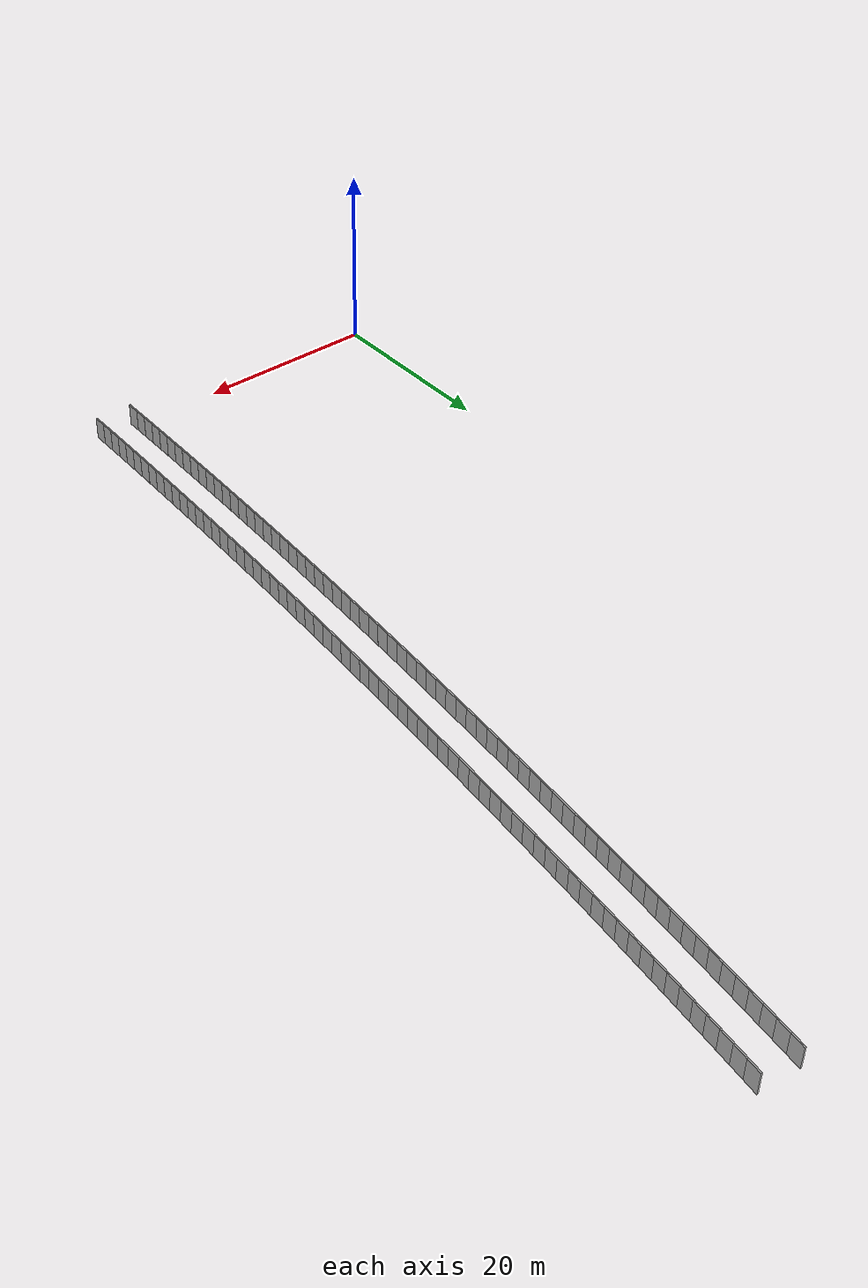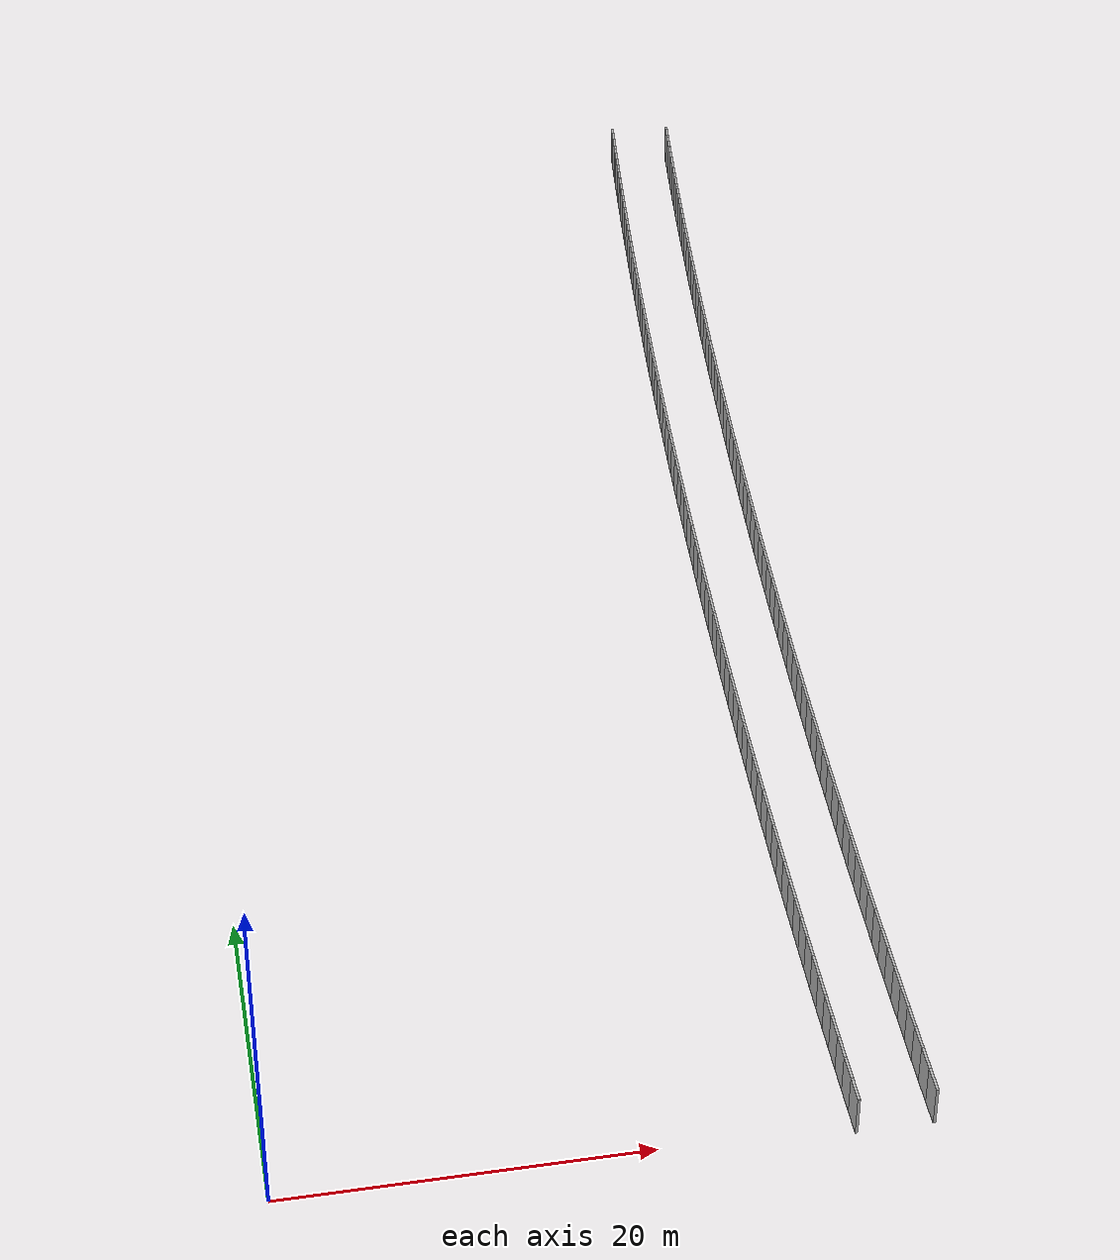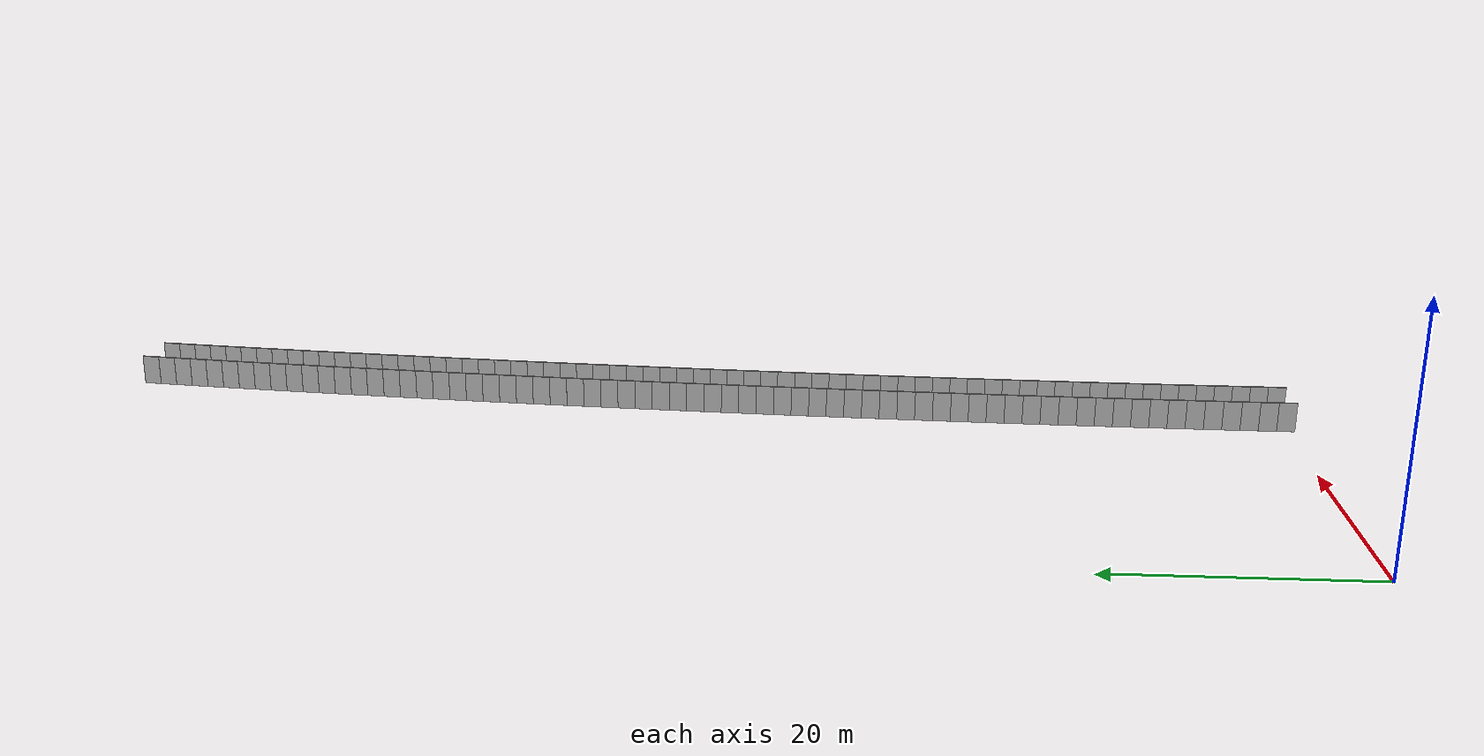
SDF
<sdf version="1.6">
 <model name="sps_0113">
  <static>1</static>
  <allow_auto_disable>0</allow_auto_disable>
  <link name="Wall5177">
   <collision name="collision"><geometry><box><size>1.49644 0.15 2.5</size></box></geometry></collision>
   <visual name="visual">
    <geometry><box><size>1.49644 0.15 2.5</size></box></geometry>
    <transparency>0.0</transparency>
   </visual>
   <pose>40.3633 98.5988 1.25 0 0 -1.68316</pose>
  </link>
  <link name="Wall5178">
   <collision name="collision"><geometry><box><size>1.4966 0.15 2.5</size></box></geometry></collision>
   <visual name="visual">
    <geometry><box><size>1.4966 0.15 2.5</size></box></geometry>
    <transparency>0.0</transparency>
   </visual>
   <pose>40.1967 97.1116 1.25 0 0 -1.68154</pose>
  </link>
  <link name="Wall5179">
   <collision name="collision"><geometry><box><size>1.49672 0.15 2.5</size></box></geometry></collision>
   <visual name="visual">
    <geometry><box><size>1.49672 0.15 2.5</size></box></geometry>
    <transparency>0.0</transparency>
   </visual>
   <pose>40.0324 95.624 1.25 0 0 -1.68006</pose>
  </link>
  <link name="Wall5180">
   <collision name="collision"><geometry><box><size>1.49643 0.15 2.5</size></box></geometry></collision>
   <visual name="visual">
    <geometry><box><size>1.49643 0.15 2.5</size></box></geometry>
    <transparency>0.0</transparency>
   </visual>
   <pose>39.8705 94.1362 1.25 0 0 -1.67831</pose>
  </link>
  <link name="Wall5181">
   <collision name="collision"><geometry><box><size>1.49636 0.15 2.5</size></box></geometry></collision>
   <visual name="visual">
    <geometry><box><size>1.49636 0.15 2.5</size></box></geometry>
    <transparency>0.0</transparency>
   </visual>
   <pose>39.7111 92.6483 1.25 0 0 -1.67672</pose>
  </link>
  <link name="Wall5182">
   <collision name="collision"><geometry><box><size>1.49656 0.15 2.5</size></box></geometry></collision>
   <visual name="visual">
    <geometry><box><size>1.49656 0.15 2.5</size></box></geometry>
    <transparency>0.0</transparency>
   </visual>
   <pose>39.554 91.1601 1.25 0 0 -1.67523</pose>
  </link>
  <link name="Wall5183">
   <collision name="collision"><geometry><box><size>1.49647 0.15 2.5</size></box></geometry></collision>
   <visual name="visual">
    <geometry><box><size>1.49647 0.15 2.5</size></box></geometry>
    <transparency>0.0</transparency>
   </visual>
   <pose>39.3993 89.6716 1.25 0 0 -1.67347</pose>
  </link>
  <link name="Wall5184">
   <collision name="collision"><geometry><box><size>1.49651 0.15 2.5</size></box></geometry></collision>
   <visual name="visual">
    <geometry><box><size>1.49651 0.15 2.5</size></box></geometry>
    <transparency>0.0</transparency>
   </visual>
   <pose>39.2469 88.1829 1.25 0 0 -1.67216</pose>
  </link>
  <link name="Wall5185">
   <collision name="collision"><geometry><box><size>1.49661 0.15 2.5</size></box></geometry></collision>
   <visual name="visual">
    <geometry><box><size>1.49661 0.15 2.5</size></box></geometry>
    <transparency>0.0</transparency>
   </visual>
   <pose>39.0969 86.6939 1.25 0 0 -1.67035</pose>
  </link>
  <link name="Wall5186">
   <collision name="collision"><geometry><box><size>1.4964 0.15 2.5</size></box></geometry></collision>
   <visual name="visual">
    <geometry><box><size>1.4964 0.15 2.5</size></box></geometry>
    <transparency>0.0</transparency>
   </visual>
   <pose>38.9492 85.2047 1.25 0 0 -1.66893</pose>
  </link>
  <link name="Wall5187">
   <collision name="collision"><geometry><box><size>1.49657 0.15 2.5</size></box></geometry></collision>
   <visual name="visual">
    <geometry><box><size>1.49657 0.15 2.5</size></box></geometry>
    <transparency>0.0</transparency>
   </visual>
   <pose>38.8039 83.7153 1.25 0 0 -1.66719</pose>
  </link>
  <link name="Wall5188">
   <collision name="collision"><geometry><box><size>1.49656 0.15 2.5</size></box></geometry></collision>
   <visual name="visual">
    <geometry><box><size>1.49656 0.15 2.5</size></box></geometry>
    <transparency>0.0</transparency>
   </visual>
   <pose>38.6608 82.2256 1.25 0 0 -1.6658</pose>
  </link>
  <link name="Wall5189">
   <collision name="collision"><geometry><box><size>1.4965 0.15 2.5</size></box></geometry></collision>
   <visual name="visual">
    <geometry><box><size>1.4965 0.15 2.5</size></box></geometry>
    <transparency>0.0</transparency>
   </visual>
   <pose>38.5202 80.7357 1.25 0 0 -1.66409</pose>
  </link>
  <link name="Wall5190">
   <collision name="collision"><geometry><box><size>1.49648 0.15 2.5</size></box></geometry></collision>
   <visual name="visual">
    <geometry><box><size>1.49648 0.15 2.5</size></box></geometry>
    <transparency>0.0</transparency>
   </visual>
   <pose>38.3819 79.2456 1.25 0 0 -1.66261</pose>
  </link>
  <link name="Wall5191">
   <collision name="collision"><geometry><box><size>1.4965 0.15 2.5</size></box></geometry></collision>
   <visual name="visual">
    <geometry><box><size>1.4965 0.15 2.5</size></box></geometry>
    <transparency>0.0</transparency>
   </visual>
   <pose>38.2458 77.7553 1.25 0 0 -1.66101</pose>
  </link>
  <link name="Wall5192">
   <collision name="collision"><geometry><box><size>1.49663 0.15 2.5</size></box></geometry></collision>
   <visual name="visual">
    <geometry><box><size>1.49663 0.15 2.5</size></box></geometry>
    <transparency>0.0</transparency>
   </visual>
   <pose>38.1123 76.2647 1.25 0 0 -1.65924</pose>
  </link>
  <link name="Wall5193">
   <collision name="collision"><geometry><box><size>1.49644 0.15 2.5</size></box></geometry></collision>
   <visual name="visual">
    <geometry><box><size>1.49644 0.15 2.5</size></box></geometry>
    <transparency>0.0</transparency>
   </visual>
   <pose>37.9813 74.7739 1.25 0 0 -1.65774</pose>
  </link>
  <link name="Wall5194">
   <collision name="collision"><geometry><box><size>1.4965 0.15 2.5</size></box></geometry></collision>
   <visual name="visual">
    <geometry><box><size>1.4965 0.15 2.5</size></box></geometry>
    <transparency>0.0</transparency>
   </visual>
   <pose>37.8524 73.283 1.25 0 0 -1.65631</pose>
  </link>
  <link name="Wall5195">
   <collision name="collision"><geometry><box><size>1.49664 0.15 2.5</size></box></geometry></collision>
   <visual name="visual">
    <geometry><box><size>1.49664 0.15 2.5</size></box></geometry>
    <transparency>0.0</transparency>
   </visual>
   <pose>37.7259 71.7918 1.25 0 0 -1.65458</pose>
  </link>
  <link name="Wall5196">
   <collision name="collision"><geometry><box><size>1.49644 0.15 2.5</size></box></geometry></collision>
   <visual name="visual">
    <geometry><box><size>1.49644 0.15 2.5</size></box></geometry>
    <transparency>0.0</transparency>
   </visual>
   <pose>37.6018 70.3004 1.25 0 0 -1.65295</pose>
  </link>
  <link name="Wall5197">
   <collision name="collision"><geometry><box><size>1.49667 0.15 2.5</size></box></geometry></collision>
   <visual name="visual">
    <geometry><box><size>1.49667 0.15 2.5</size></box></geometry>
    <transparency>0.0</transparency>
   </visual>
   <pose>37.4802 68.8088 1.25 0 0 -1.6513</pose>
  </link>
  <link name="Wall5198">
   <collision name="collision"><geometry><box><size>1.49644 0.15 2.5</size></box></geometry></collision>
   <visual name="visual">
    <geometry><box><size>1.49644 0.15 2.5</size></box></geometry>
    <transparency>0.0</transparency>
   </visual>
   <pose>37.361 67.317 1.25 0 0 -1.64988</pose>
  </link>
  <link name="Wall5199">
   <collision name="collision"><geometry><box><size>1.4965 0.15 2.5</size></box></geometry></collision>
   <visual name="visual">
    <geometry><box><size>1.4965 0.15 2.5</size></box></geometry>
    <transparency>0.0</transparency>
   </visual>
   <pose>37.2439 65.8251 1.25 0 0 -1.64837</pose>
  </link>
  <link name="Wall5200">
   <collision name="collision"><geometry><box><size>1.49655 0.15 2.5</size></box></geometry></collision>
   <visual name="visual">
    <geometry><box><size>1.49655 0.15 2.5</size></box></geometry>
    <transparency>0.0</transparency>
   </visual>
   <pose>37.1292 64.333 1.25 0 0 -1.64665</pose>
  </link>
  <link name="Wall5201">
   <collision name="collision"><geometry><box><size>1.49651 0.15 2.5</size></box></geometry></collision>
   <visual name="visual">
    <geometry><box><size>1.49651 0.15 2.5</size></box></geometry>
    <transparency>0.0</transparency>
   </visual>
   <pose>37.0169 62.8407 1.25 0 0 -1.64518</pose>
  </link>
  <link name="Wall5202">
   <collision name="collision"><geometry><box><size>1.49656 0.15 2.5</size></box></geometry></collision>
   <visual name="visual">
    <geometry><box><size>1.49656 0.15 2.5</size></box></geometry>
    <transparency>0.0</transparency>
   </visual>
   <pose>36.907 61.3482 1.25 0 0 -1.64341</pose>
  </link>
  <link name="Wall5203">
   <collision name="collision"><geometry><box><size>1.49641 0.15 2.5</size></box></geometry></collision>
   <visual name="visual">
    <geometry><box><size>1.49641 0.15 2.5</size></box></geometry>
    <transparency>0.0</transparency>
   </visual>
   <pose>36.7995 59.8556 1.25 0 0 -1.64199</pose>
  </link>
  <link name="Wall5204">
   <collision name="collision"><geometry><box><size>1.4966 0.15 2.5</size></box></geometry></collision>
   <visual name="visual">
    <geometry><box><size>1.4966 0.15 2.5</size></box></geometry>
    <transparency>0.0</transparency>
   </visual>
   <pose>36.6942 58.3628 1.25 0 0 -1.64035</pose>
  </link>
  <link name="Wall5205">
   <collision name="collision"><geometry><box><size>1.49643 0.15 2.5</size></box></geometry></collision>
   <visual name="visual">
    <geometry><box><size>1.49643 0.15 2.5</size></box></geometry>
    <transparency>0.0</transparency>
   </visual>
   <pose>36.5915 56.8698 1.25 0 0 -1.63872</pose>
  </link>
  <link name="Wall5206">
   <collision name="collision"><geometry><box><size>1.49652 0.15 2.5</size></box></geometry></collision>
   <visual name="visual">
    <geometry><box><size>1.49652 0.15 2.5</size></box></geometry>
    <transparency>0.0</transparency>
   </visual>
   <pose>36.4911 55.3767 1.25 0 0 -1.63716</pose>
  </link>
  <link name="Wall5207">
   <collision name="collision"><geometry><box><size>1.49655 0.15 2.5</size></box></geometry></collision>
   <visual name="visual">
    <geometry><box><size>1.49655 0.15 2.5</size></box></geometry>
    <transparency>0.0</transparency>
   </visual>
   <pose>36.3929 53.8834 1.25 0 0 -1.63565</pose>
  </link>
  <link name="Wall5208">
   <collision name="collision"><geometry><box><size>1.49658 0.15 2.5</size></box></geometry></collision>
   <visual name="visual">
    <geometry><box><size>1.49658 0.15 2.5</size></box></geometry>
    <transparency>0.0</transparency>
   </visual>
   <pose>36.2971 52.3899 1.25 0 0 -1.63405</pose>
  </link>
  <link name="Wall5209">
   <collision name="collision"><geometry><box><size>1.49642 0.15 2.5</size></box></geometry></collision>
   <visual name="visual">
    <geometry><box><size>1.49642 0.15 2.5</size></box></geometry>
    <transparency>0.0</transparency>
   </visual>
   <pose>36.2038 50.8963 1.25 0 0 -1.6323</pose>
  </link>
  <link name="Wall5210">
   <collision name="collision"><geometry><box><size>1.49648 0.15 2.5</size></box></geometry></collision>
   <visual name="visual">
    <geometry><box><size>1.49648 0.15 2.5</size></box></geometry>
    <transparency>0.0</transparency>
   </visual>
   <pose>36.1128 49.4026 1.25 0 0 -1.63099</pose>
  </link>
  <link name="Wall5211">
   <collision name="collision"><geometry><box><size>1.49657 0.15 2.5</size></box></geometry></collision>
   <visual name="visual">
    <geometry><box><size>1.49657 0.15 2.5</size></box></geometry>
    <transparency>0.0</transparency>
   </visual>
   <pose>36.0241 47.9087 1.25 0 0 -1.62923</pose>
  </link>
  <link name="Wall5212">
   <collision name="collision"><geometry><box><size>1.49643 0.15 2.5</size></box></geometry></collision>
   <visual name="visual">
    <geometry><box><size>1.49643 0.15 2.5</size></box></geometry>
    <transparency>0.0</transparency>
   </visual>
   <pose>35.9379 46.4147 1.25 0 0 -1.6276</pose>
  </link>
  <link name="Wall5213">
   <collision name="collision"><geometry><box><size>1.4965 0.15 2.5</size></box></geometry></collision>
   <visual name="visual">
    <geometry><box><size>1.4965 0.15 2.5</size></box></geometry>
    <transparency>0.0</transparency>
   </visual>
   <pose>35.8541 44.9206 1.25 0 0 -1.62617</pose>
  </link>
  <link name="Wall5214">
   <collision name="collision"><geometry><box><size>1.49672 0.15 2.5</size></box></geometry></collision>
   <visual name="visual">
    <geometry><box><size>1.49672 0.15 2.5</size></box></geometry>
    <transparency>0.0</transparency>
   </visual>
   <pose>35.7725 43.4262 1.25 0 0 -1.62441</pose>
  </link>
  <link name="Wall5215">
   <collision name="collision"><geometry><box><size>1.49648 0.15 2.5</size></box></geometry></collision>
   <visual name="visual">
    <geometry><box><size>1.49648 0.15 2.5</size></box></geometry>
    <transparency>0.0</transparency>
   </visual>
   <pose>35.6934 41.9317 1.25 0 0 -1.62294</pose>
  </link>
  <link name="Wall5216">
   <collision name="collision"><geometry><box><size>1.49648 0.15 2.5</size></box></geometry></collision>
   <visual name="visual">
    <geometry><box><size>1.49648 0.15 2.5</size></box></geometry>
    <transparency>0.0</transparency>
   </visual>
   <pose>35.6167 40.4372 1.25 0 0 -1.62131</pose>
  </link>
  <link name="Wall5217">
   <collision name="collision"><geometry><box><size>1.49642 0.15 2.5</size></box></geometry></collision>
   <visual name="visual">
    <geometry><box><size>1.49642 0.15 2.5</size></box></geometry>
    <transparency>0.0</transparency>
   </visual>
   <pose>35.5423 38.9426 1.25 0 0 -1.61976</pose>
  </link>
  <link name="Wall5218">
   <collision name="collision"><geometry><box><size>1.49644 0.15 2.5</size></box></geometry></collision>
   <visual name="visual">
    <geometry><box><size>1.49644 0.15 2.5</size></box></geometry>
    <transparency>0.0</transparency>
   </visual>
   <pose>35.4701 37.4479 1.25 0 0 -1.61825</pose>
  </link>
  <link name="Wall5219">
   <collision name="collision"><geometry><box><size>1.49656 0.15 2.5</size></box></geometry></collision>
   <visual name="visual">
    <geometry><box><size>1.49656 0.15 2.5</size></box></geometry>
    <transparency>0.0</transparency>
   </visual>
   <pose>35.4004 35.953 1.25 0 0 -1.61653</pose>
  </link>
  <link name="Wall5220">
   <collision name="collision"><geometry><box><size>1.4967 0.15 2.5</size></box></geometry></collision>
   <visual name="visual">
    <geometry><box><size>1.4967 0.15 2.5</size></box></geometry>
    <transparency>0.0</transparency>
   </visual>
   <pose>35.3332 34.4579 1.25 0 0 -1.61502</pose>
  </link>
  <link name="Wall5221">
   <collision name="collision"><geometry><box><size>1.49636 0.15 2.5</size></box></geometry></collision>
   <visual name="visual">
    <geometry><box><size>1.49636 0.15 2.5</size></box></geometry>
    <transparency>0.0</transparency>
   </visual>
   <pose>35.2681 32.9628 1.25 0 0 -1.61347</pose>
  </link>
  <link name="Wall5222">
   <collision name="collision"><geometry><box><size>1.49668 0.15 2.5</size></box></geometry></collision>
   <visual name="visual">
    <geometry><box><size>1.49668 0.15 2.5</size></box></geometry>
    <transparency>0.0</transparency>
   </visual>
   <pose>35.2055 31.4676 1.25 0 0 -1.61183</pose>
  </link>
  <link name="Wall5223">
   <collision name="collision"><geometry><box><size>1.49633 0.15 2.5</size></box></geometry></collision>
   <visual name="visual">
    <geometry><box><size>1.49633 0.15 2.5</size></box></geometry>
    <transparency>0.0</transparency>
   </visual>
   <pose>35.1454 29.9723 1.25 0 0 -1.61009</pose>
  </link>
  <link name="Wall5224">
   <collision name="collision"><geometry><box><size>1.49668 0.15 2.5</size></box></geometry></collision>
   <visual name="visual">
    <geometry><box><size>1.49668 0.15 2.5</size></box></geometry>
    <transparency>0.0</transparency>
   </visual>
   <pose>35.0876 28.4769 1.25 0 0 -1.60877</pose>
  </link>
  <link name="Wall5225">
   <collision name="collision"><geometry><box><size>1.49659 0.15 2.5</size></box></geometry></collision>
   <visual name="visual">
    <geometry><box><size>1.49659 0.15 2.5</size></box></geometry>
    <transparency>0.0</transparency>
   </visual>
   <pose>35.0321 26.9813 1.25 0 0 -1.60702</pose>
  </link>
  <link name="Wall5226">
   <collision name="collision"><geometry><box><size>1.4965 0.15 2.5</size></box></geometry></collision>
   <visual name="visual">
    <geometry><box><size>1.4965 0.15 2.5</size></box></geometry>
    <transparency>0.0</transparency>
   </visual>
   <pose>34.9791 25.4857 1.25 0 0 -1.60539</pose>
  </link>
  <link name="Wall5227">
   <collision name="collision"><geometry><box><size>1.49661 0.15 2.5</size></box></geometry></collision>
   <visual name="visual">
    <geometry><box><size>1.49661 0.15 2.5</size></box></geometry>
    <transparency>0.0</transparency>
   </visual>
   <pose>34.9285 23.99 1.25 0 0 -1.60396</pose>
  </link>
  <link name="Wall5228">
   <collision name="collision"><geometry><box><size>1.49635 0.15 2.5</size></box></geometry></collision>
   <visual name="visual">
    <geometry><box><size>1.49635 0.15 2.5</size></box></geometry>
    <transparency>0.0</transparency>
   </visual>
   <pose>34.8801 22.4943 1.25 0 0 -1.60233</pose>
  </link>
  <link name="Wall5229">
   <collision name="collision"><geometry><box><size>1.49646 0.15 2.5</size></box></geometry></collision>
   <visual name="visual">
    <geometry><box><size>1.49646 0.15 2.5</size></box></geometry>
    <transparency>0.0</transparency>
   </visual>
   <pose>34.8341 20.9986 1.25 0 0 -1.60074</pose>
  </link>
  <link name="Wall5230">
   <collision name="collision"><geometry><box><size>1.49639 0.15 2.5</size></box></geometry></collision>
   <visual name="visual">
    <geometry><box><size>1.49639 0.15 2.5</size></box></geometry>
    <transparency>0.0</transparency>
   </visual>
   <pose>34.7905 19.5028 1.25 0 0 -1.59915</pose>
  </link>
  <link name="Wall5231">
   <collision name="collision"><geometry><box><size>1.49657 0.15 2.5</size></box></geometry></collision>
   <visual name="visual">
    <geometry><box><size>1.49657 0.15 2.5</size></box></geometry>
    <transparency>0.0</transparency>
   </visual>
   <pose>34.7493 18.0069 1.25 0 0 -1.59751</pose>
  </link>
  <link name="Wall5232">
   <collision name="collision"><geometry><box><size>1.49663 0.15 2.5</size></box></geometry></collision>
   <visual name="visual">
    <geometry><box><size>1.49663 0.15 2.5</size></box></geometry>
    <transparency>0.0</transparency>
   </visual>
   <pose>34.7105 16.5108 1.25 0 0 -1.59592</pose>
  </link>
  <link name="Wall5233">
   <collision name="collision"><geometry><box><size>1.49645 0.15 2.5</size></box></geometry></collision>
   <visual name="visual">
    <geometry><box><size>1.49645 0.15 2.5</size></box></geometry>
    <transparency>0.0</transparency>
   </visual>
   <pose>34.674 15.0147 1.25 0 0 -1.59445</pose>
  </link>
  <link name="Wall5234">
   <collision name="collision"><geometry><box><size>1.49652 0.15 2.5</size></box></geometry></collision>
   <visual name="visual">
    <geometry><box><size>1.49652 0.15 2.5</size></box></geometry>
    <transparency>0.0</transparency>
   </visual>
   <pose>34.6399 13.5186 1.25 0 0 -1.59274</pose>
  </link>
  <link name="Wall5235">
   <collision name="collision"><geometry><box><size>1.49671 0.15 2.5</size></box></geometry></collision>
   <visual name="visual">
    <geometry><box><size>1.49671 0.15 2.5</size></box></geometry>
    <transparency>0.0</transparency>
   </visual>
   <pose>34.6081 12.0223 1.25 0 0 -1.59123</pose>
  </link>
  <link name="Wall5236">
   <collision name="collision"><geometry><box><size>1.49648 0.15 2.5</size></box></geometry></collision>
   <visual name="visual">
    <geometry><box><size>1.49648 0.15 2.5</size></box></geometry>
    <transparency>0.0</transparency>
   </visual>
   <pose>34.5788 10.526 1.25 0 0 -1.58964</pose>
  </link>
  <link name="Wall5237">
   <collision name="collision"><geometry><box><size>1.49644 0.15 2.5</size></box></geometry></collision>
   <visual name="visual">
    <geometry><box><size>1.49644 0.15 2.5</size></box></geometry>
    <transparency>0.0</transparency>
   </visual>
   <pose>34.5517 9.0298 1.25 0 0 -1.58805</pose>
  </link>
  <link name="Wall5238">
   <collision name="collision"><geometry><box><size>1.49658 0.15 2.5</size></box></geometry></collision>
   <visual name="visual">
    <geometry><box><size>1.49658 0.15 2.5</size></box></geometry>
    <transparency>0.0</transparency>
   </visual>
   <pose>34.5271 7.53349 1.25 0 0 -1.58654</pose>
  </link>
  <link name="Wall5239">
   <collision name="collision"><geometry><box><size>1.49655 0.15 2.5</size></box></geometry></collision>
   <visual name="visual">
    <geometry><box><size>1.49655 0.15 2.5</size></box></geometry>
    <transparency>0.0</transparency>
   </visual>
   <pose>34.5048 6.03709 1.25 0 0 -1.58483</pose>
  </link>
  <link name="Wall5240">
   <collision name="collision"><geometry><box><size>1.49652 0.15 2.5</size></box></geometry></collision>
   <visual name="visual">
    <geometry><box><size>1.49652 0.15 2.5</size></box></geometry>
    <transparency>0.0</transparency>
   </visual>
   <pose>34.4849 4.54069 1.25 0 0 -1.58336</pose>
  </link>
  <link name="Wall5241">
   <collision name="collision"><geometry><box><size>1.49649 0.15 2.5</size></box></geometry></collision>
   <visual name="visual">
    <geometry><box><size>1.49649 0.15 2.5</size></box></geometry>
    <transparency>0.0</transparency>
   </visual>
   <pose>34.4673 3.0443 1.25 0 0 -1.58177</pose>
  </link>
  <link name="Wall5242">
   <collision name="collision"><geometry><box><size>1.49646 0.15 2.5</size></box></geometry></collision>
   <visual name="visual">
    <geometry><box><size>1.49646 0.15 2.5</size></box></geometry>
    <transparency>0.0</transparency>
   </visual>
   <pose>34.452 1.5479 1.25 0 0 -1.58018</pose>
  </link>
  <link name="Wall5243">
   <collision name="collision"><geometry><box><size>1.49663 0.15 2.5</size></box></geometry></collision>
   <visual name="visual">
    <geometry><box><size>1.49663 0.15 2.5</size></box></geometry>
    <transparency>0.0</transparency>
   </visual>
   <pose>34.4392 0.0514058 1.25 0 0 -1.57854</pose>
  </link>
  <link name="Wall6973">
   <collision name="collision"><geometry><box><size>1.50307 0.15 2.5</size></box></geometry></collision>
   <visual name="visual">
    <geometry><box><size>1.50307 0.15 2.5</size></box></geometry>
    <transparency>0.0</transparency>
   </visual>
   <pose>36.2501 99.0627 1.25 0 0 -1.68319</pose>
  </link>
  <link name="Wall6974">
   <collision name="collision"><geometry><box><size>1.50315 0.15 2.5</size></box></geometry></collision>
   <visual name="visual">
    <geometry><box><size>1.50315 0.15 2.5</size></box></geometry>
    <transparency>0.0</transparency>
   </visual>
   <pose>36.0828 97.5689 1.25 0 0 -1.68147</pose>
  </link>
  <link name="Wall6975">
   <collision name="collision"><geometry><box><size>1.50299 0.15 2.5</size></box></geometry></collision>
   <visual name="visual">
    <geometry><box><size>1.50299 0.15 2.5</size></box></geometry>
    <transparency>0.0</transparency>
   </visual>
   <pose>35.9178 96.0749 1.25 0 0 -1.68013</pose>
  </link>
  <link name="Wall6976">
   <collision name="collision"><geometry><box><size>1.50305 0.15 2.5</size></box></geometry></collision>
   <visual name="visual">
    <geometry><box><size>1.50305 0.15 2.5</size></box></geometry>
    <transparency>0.0</transparency>
   </visual>
   <pose>35.7552 94.5807 1.25 0 0 -1.67825</pose>
  </link>
  <link name="Wall6977">
   <collision name="collision"><geometry><box><size>1.50324 0.15 2.5</size></box></geometry></collision>
   <visual name="visual">
    <geometry><box><size>1.50324 0.15 2.5</size></box></geometry>
    <transparency>0.0</transparency>
   </visual>
   <pose>35.5951 93.0861 1.25 0 0 -1.67676</pose>
  </link>
  <link name="Wall6978">
   <collision name="collision"><geometry><box><size>1.50299 0.15 2.5</size></box></geometry></collision>
   <visual name="visual">
    <geometry><box><size>1.50299 0.15 2.5</size></box></geometry>
    <transparency>0.0</transparency>
   </visual>
   <pose>35.4373 91.5913 1.25 0 0 -1.67519</pose>
  </link>
  <link name="Wall6979">
   <collision name="collision"><geometry><box><size>1.50312 0.15 2.5</size></box></geometry></collision>
   <visual name="visual">
    <geometry><box><size>1.50312 0.15 2.5</size></box></geometry>
    <transparency>0.0</transparency>
   </visual>
   <pose>35.2819 90.0963 1.25 0 0 -1.67367</pose>
  </link>
  <link name="Wall6980">
   <collision name="collision"><geometry><box><size>1.50295 0.15 2.5</size></box></geometry></collision>
   <visual name="visual">
    <geometry><box><size>1.50295 0.15 2.5</size></box></geometry>
    <transparency>0.0</transparency>
   </visual>
   <pose>35.1287 88.6011 1.25 0 0 -1.67213</pose>
  </link>
  <link name="Wall6981">
   <collision name="collision"><geometry><box><size>1.50307 0.15 2.5</size></box></geometry></collision>
   <visual name="visual">
    <geometry><box><size>1.50307 0.15 2.5</size></box></geometry>
    <transparency>0.0</transparency>
   </visual>
   <pose>34.9778 87.1057 1.25 0 0 -1.67049</pose>
  </link>
  <link name="Wall6982">
   <collision name="collision"><geometry><box><size>1.50317 0.15 2.5</size></box></geometry></collision>
   <visual name="visual">
    <geometry><box><size>1.50317 0.15 2.5</size></box></geometry>
    <transparency>0.0</transparency>
   </visual>
   <pose>34.8296 85.6099 1.25 0 0 -1.66873</pose>
  </link>
  <link name="Wall6983">
   <collision name="collision"><geometry><box><size>1.50297 0.15 2.5</size></box></geometry></collision>
   <visual name="visual">
    <geometry><box><size>1.50297 0.15 2.5</size></box></geometry>
    <transparency>0.0</transparency>
   </visual>
   <pose>34.6836 84.1139 1.25 0 0 -1.66731</pose>
  </link>
  <link name="Wall6984">
   <collision name="collision"><geometry><box><size>1.50316 0.15 2.5</size></box></geometry></collision>
   <visual name="visual">
    <geometry><box><size>1.50316 0.15 2.5</size></box></geometry>
    <transparency>0.0</transparency>
   </visual>
   <pose>34.54 82.6177 1.25 0 0 -1.66567</pose>
  </link>
  <link name="Wall6985">
   <collision name="collision"><geometry><box><size>1.50317 0.15 2.5</size></box></geometry></collision>
   <visual name="visual">
    <geometry><box><size>1.50317 0.15 2.5</size></box></geometry>
    <transparency>0.0</transparency>
   </visual>
   <pose>34.3989 81.1212 1.25 0 0 -1.66404</pose>
  </link>
  <link name="Wall6986">
   <collision name="collision"><geometry><box><size>1.5029 0.15 2.5</size></box></geometry></collision>
   <visual name="visual">
    <geometry><box><size>1.5029 0.15 2.5</size></box></geometry>
    <transparency>0.0</transparency>
   </visual>
   <pose>34.2601 79.6246 1.25 0 0 -1.6625</pose>
  </link>
  <link name="Wall6987">
   <collision name="collision"><geometry><box><size>1.50312 0.15 2.5</size></box></geometry></collision>
   <visual name="visual">
    <geometry><box><size>1.50312 0.15 2.5</size></box></geometry>
    <transparency>0.0</transparency>
   </visual>
   <pose>34.1236 78.1278 1.25 0 0 -1.66098</pose>
  </link>
  <link name="Wall6988">
   <collision name="collision"><geometry><box><size>1.50309 0.15 2.5</size></box></geometry></collision>
   <visual name="visual">
    <geometry><box><size>1.50309 0.15 2.5</size></box></geometry>
    <transparency>0.0</transparency>
   </visual>
   <pose>33.9894 76.6307 1.25 0 0 -1.65939</pose>
  </link>
  <link name="Wall6989">
   <collision name="collision"><geometry><box><size>1.50305 0.15 2.5</size></box></geometry></collision>
   <visual name="visual">
    <geometry><box><size>1.50305 0.15 2.5</size></box></geometry>
    <transparency>0.0</transparency>
   </visual>
   <pose>33.8577 75.1334 1.25 0 0 -1.65768</pose>
  </link>
  <link name="Wall6990">
   <collision name="collision"><geometry><box><size>1.50309 0.15 2.5</size></box></geometry></collision>
   <visual name="visual">
    <geometry><box><size>1.50309 0.15 2.5</size></box></geometry>
    <transparency>0.0</transparency>
   </visual>
   <pose>33.7284 73.6359 1.25 0 0 -1.65617</pose>
  </link>
  <link name="Wall6991">
   <collision name="collision"><geometry><box><size>1.50308 0.15 2.5</size></box></geometry></collision>
   <visual name="visual">
    <geometry><box><size>1.50308 0.15 2.5</size></box></geometry>
    <transparency>0.0</transparency>
   </visual>
   <pose>33.6014 72.1382 1.25 0 0 -1.65459</pose>
  </link>
  <link name="Wall6992">
   <collision name="collision"><geometry><box><size>1.50306 0.15 2.5</size></box></geometry></collision>
   <visual name="visual">
    <geometry><box><size>1.50306 0.15 2.5</size></box></geometry>
    <transparency>0.0</transparency>
   </visual>
   <pose>33.4768 70.6403 1.25 0 0 -1.653</pose>
  </link>
  <link name="Wall6993">
   <collision name="collision"><geometry><box><size>1.50313 0.15 2.5</size></box></geometry></collision>
   <visual name="visual">
    <geometry><box><size>1.50313 0.15 2.5</size></box></geometry>
    <transparency>0.0</transparency>
   </visual>
   <pose>33.3545 69.1422 1.25 0 0 -1.65153</pose>
  </link>
  <link name="Wall6994">
   <collision name="collision"><geometry><box><size>1.5031 0.15 2.5</size></box></geometry></collision>
   <visual name="visual">
    <geometry><box><size>1.5031 0.15 2.5</size></box></geometry>
    <transparency>0.0</transparency>
   </visual>
   <pose>33.2345 67.6439 1.25 0 0 -1.64978</pose>
  </link>
  <link name="Wall6995">
   <collision name="collision"><geometry><box><size>1.50311 0.15 2.5</size></box></geometry></collision>
   <visual name="visual">
    <geometry><box><size>1.50311 0.15 2.5</size></box></geometry>
    <transparency>0.0</transparency>
   </visual>
   <pose>33.1171 66.1454 1.25 0 0 -1.64831</pose>
  </link>
  <link name="Wall6996">
   <collision name="collision"><geometry><box><size>1.50293 0.15 2.5</size></box></geometry></collision>
   <visual name="visual">
    <geometry><box><size>1.50293 0.15 2.5</size></box></geometry>
    <transparency>0.0</transparency>
   </visual>
   <pose>33.0019 64.6468 1.25 0 0 -1.64673</pose>
  </link>
  <link name="Wall6997">
   <collision name="collision"><geometry><box><size>1.50311 0.15 2.5</size></box></geometry></collision>
   <visual name="visual">
    <geometry><box><size>1.50311 0.15 2.5</size></box></geometry>
    <transparency>0.0</transparency>
   </visual>
   <pose>32.8891 63.148 1.25 0 0 -1.64509</pose>
  </link>
  <link name="Wall6998">
   <collision name="collision"><geometry><box><size>1.50318 0.15 2.5</size></box></geometry></collision>
   <visual name="visual">
    <geometry><box><size>1.50318 0.15 2.5</size></box></geometry>
    <transparency>0.0</transparency>
   </visual>
   <pose>32.7787 61.6489 1.25 0 0 -1.6435</pose>
  </link>
  <link name="Wall6999">
   <collision name="collision"><geometry><box><size>1.50301 0.15 2.5</size></box></geometry></collision>
   <visual name="visual">
    <geometry><box><size>1.50301 0.15 2.5</size></box></geometry>
    <transparency>0.0</transparency>
   </visual>
   <pose>32.6707 60.1497 1.25 0 0 -1.64192</pose>
  </link>
  <link name="Wall7000">
   <collision name="collision"><geometry><box><size>1.50327 0.15 2.5</size></box></geometry></collision>
   <visual name="visual">
    <geometry><box><size>1.50327 0.15 2.5</size></box></geometry>
    <transparency>0.0</transparency>
   </visual>
   <pose>32.5651 58.6503 1.25 0 0 -1.64032</pose>
  </link>
  <link name="Wall7001">
   <collision name="collision"><geometry><box><size>1.50287 0.15 2.5</size></box></geometry></collision>
   <visual name="visual">
    <geometry><box><size>1.50287 0.15 2.5</size></box></geometry>
    <transparency>0.0</transparency>
   </visual>
   <pose>32.4618 57.1508 1.25 0 0 -1.63883</pose>
  </link>
  <link name="Wall7002">
   <collision name="collision"><geometry><box><size>1.50306 0.15 2.5</size></box></geometry></collision>
   <visual name="visual">
    <geometry><box><size>1.50306 0.15 2.5</size></box></geometry>
    <transparency>0.0</transparency>
   </visual>
   <pose>32.3609 55.6512 1.25 0 0 -1.63712</pose>
  </link>
  <link name="Wall7003">
   <collision name="collision"><geometry><box><size>1.50298 0.15 2.5</size></box></geometry></collision>
   <visual name="visual">
    <geometry><box><size>1.50298 0.15 2.5</size></box></geometry>
    <transparency>0.0</transparency>
   </visual>
   <pose>32.2624 54.1514 1.25 0 0 -1.63565</pose>
  </link>
  <link name="Wall7004">
   <collision name="collision"><geometry><box><size>1.503 0.15 2.5</size></box></geometry></collision>
   <visual name="visual">
    <geometry><box><size>1.503 0.15 2.5</size></box></geometry>
    <transparency>0.0</transparency>
   </visual>
   <pose>32.1662 52.6515 1.25 0 0 -1.63403</pose>
  </link>
  <link name="Wall7005">
   <collision name="collision"><geometry><box><size>1.50328 0.15 2.5</size></box></geometry></collision>
   <visual name="visual">
    <geometry><box><size>1.50328 0.15 2.5</size></box></geometry>
    <transparency>0.0</transparency>
   </visual>
   <pose>32.0724 51.1513 1.25 0 0 -1.63243</pose>
  </link>
  <link name="Wall7006">
   <collision name="collision"><geometry><box><size>1.50289 0.15 2.5</size></box></geometry></collision>
   <visual name="visual">
    <geometry><box><size>1.50289 0.15 2.5</size></box></geometry>
    <transparency>0.0</transparency>
   </visual>
   <pose>31.981 49.651 1.25 0 0 -1.63086</pose>
  </link>
  <link name="Wall7007">
   <collision name="collision"><geometry><box><size>1.50318 0.15 2.5</size></box></geometry></collision>
   <visual name="visual">
    <geometry><box><size>1.50318 0.15 2.5</size></box></geometry>
    <transparency>0.0</transparency>
   </visual>
   <pose>31.892 48.1506 1.25 0 0 -1.62926</pose>
  </link>
  <link name="Wall7008">
   <collision name="collision"><geometry><box><size>1.50322 0.15 2.5</size></box></geometry></collision>
   <visual name="visual">
    <geometry><box><size>1.50322 0.15 2.5</size></box></geometry>
    <transparency>0.0</transparency>
   </visual>
   <pose>31.8054 46.6499 1.25 0 0 -1.62763</pose>
  </link>
  <link name="Wall7009">
   <collision name="collision"><geometry><box><size>1.5031 0.15 2.5</size></box></geometry></collision>
   <visual name="visual">
    <geometry><box><size>1.5031 0.15 2.5</size></box></geometry>
    <transparency>0.0</transparency>
   </visual>
   <pose>31.7211 45.1491 1.25 0 0 -1.62617</pose>
  </link>
  <link name="Wall7010">
   <collision name="collision"><geometry><box><size>1.50296 0.15 2.5</size></box></geometry></collision>
   <visual name="visual">
    <geometry><box><size>1.50296 0.15 2.5</size></box></geometry>
    <transparency>0.0</transparency>
   </visual>
   <pose>31.6392 43.6483 1.25 0 0 -1.62447</pose>
  </link>
  <link name="Wall7011">
   <collision name="collision"><geometry><box><size>1.50326 0.15 2.5</size></box></geometry></collision>
   <visual name="visual">
    <geometry><box><size>1.50326 0.15 2.5</size></box></geometry>
    <transparency>0.0</transparency>
   </visual>
   <pose>31.5597 42.1473 1.25 0 0 -1.62283</pose>
  </link>
  <link name="Wall7012">
   <collision name="collision"><geometry><box><size>1.5029 0.15 2.5</size></box></geometry></collision>
   <visual name="visual">
    <geometry><box><size>1.5029 0.15 2.5</size></box></geometry>
    <transparency>0.0</transparency>
   </visual>
   <pose>31.4827 40.6462 1.25 0 0 -1.62138</pose>
  </link>
  <link name="Wall7013">
   <collision name="collision"><geometry><box><size>1.50302 0.15 2.5</size></box></geometry></collision>
   <visual name="visual">
    <geometry><box><size>1.50302 0.15 2.5</size></box></geometry>
    <transparency>0.0</transparency>
   </visual>
   <pose>31.408 39.1451 1.25 0 0 -1.61967</pose>
  </link>
  <link name="Wall7014">
   <collision name="collision"><geometry><box><size>1.50309 0.15 2.5</size></box></geometry></collision>
   <visual name="visual">
    <geometry><box><size>1.50309 0.15 2.5</size></box></geometry>
    <transparency>0.0</transparency>
   </visual>
   <pose>31.3357 37.6438 1.25 0 0 -1.61816</pose>
  </link>
  <link name="Wall7015">
   <collision name="collision"><geometry><box><size>1.50316 0.15 2.5</size></box></geometry></collision>
   <visual name="visual">
    <geometry><box><size>1.50316 0.15 2.5</size></box></geometry>
    <transparency>0.0</transparency>
   </visual>
   <pose>31.2657 36.1423 1.25 0 0 -1.61657</pose>
  </link>
  <link name="Wall7016">
   <collision name="collision"><geometry><box><size>1.50305 0.15 2.5</size></box></geometry></collision>
   <visual name="visual">
    <geometry><box><size>1.50305 0.15 2.5</size></box></geometry>
    <transparency>0.0</transparency>
   </visual>
   <pose>31.1981 34.6407 1.25 0 0 -1.61499</pose>
  </link>
  <link name="Wall7017">
   <collision name="collision"><geometry><box><size>1.5032 0.15 2.5</size></box></geometry></collision>
   <visual name="visual">
    <geometry><box><size>1.5032 0.15 2.5</size></box></geometry>
    <transparency>0.0</transparency>
   </visual>
   <pose>31.1329 33.139 1.25 0 0 -1.6134</pose>
  </link>
  <link name="Wall7018">
   <collision name="collision"><geometry><box><size>1.50304 0.15 2.5</size></box></geometry></collision>
   <visual name="visual">
    <geometry><box><size>1.50304 0.15 2.5</size></box></geometry>
    <transparency>0.0</transparency>
   </visual>
   <pose>31.07 31.6372 1.25 0 0 -1.6119</pose>
  </link>
  <link name="Wall7019">
   <collision name="collision"><geometry><box><size>1.503 0.15 2.5</size></box></geometry></collision>
   <visual name="visual">
    <geometry><box><size>1.503 0.15 2.5</size></box></geometry>
    <transparency>0.0</transparency>
   </visual>
   <pose>31.0095 30.1354 1.25 0 0 -1.6102</pose>
  </link>
  <link name="Wall7020">
   <collision name="collision"><geometry><box><size>1.50328 0.15 2.5</size></box></geometry></collision>
   <visual name="visual">
    <geometry><box><size>1.50328 0.15 2.5</size></box></geometry>
    <transparency>0.0</transparency>
   </visual>
   <pose>30.9514 28.6334 1.25 0 0 -1.60873</pose>
  </link>
  <link name="Wall7021">
   <collision name="collision"><geometry><box><size>1.503 0.15 2.5</size></box></geometry></collision>
   <visual name="visual">
    <geometry><box><size>1.503 0.15 2.5</size></box></geometry>
    <transparency>0.0</transparency>
   </visual>
   <pose>30.8957 27.1313 1.25 0 0 -1.60703</pose>
  </link>
  <link name="Wall7022">
   <collision name="collision"><geometry><box><size>1.5031 0.15 2.5</size></box></geometry></collision>
   <visual name="visual">
    <geometry><box><size>1.5031 0.15 2.5</size></box></geometry>
    <transparency>0.0</transparency>
   </visual>
   <pose>30.8423 25.6292 1.25 0 0 -1.60552</pose>
  </link>
  <link name="Wall7023">
   <collision name="collision"><geometry><box><size>1.50302 0.15 2.5</size></box></geometry></collision>
   <visual name="visual">
    <geometry><box><size>1.50302 0.15 2.5</size></box></geometry>
    <transparency>0.0</transparency>
   </visual>
   <pose>30.7913 24.127 1.25 0 0 -1.60394</pose>
  </link>
  <link name="Wall7024">
   <collision name="collision"><geometry><box><size>1.50294 0.15 2.5</size></box></geometry></collision>
   <visual name="visual">
    <geometry><box><size>1.50294 0.15 2.5</size></box></geometry>
    <transparency>0.0</transparency>
   </visual>
   <pose>30.7429 22.6248 1.25 0 0 -1.60219</pose>
  </link>
  <link name="Wall7025">
   <collision name="collision"><geometry><box><size>1.50306 0.15 2.5</size></box></geometry></collision>
   <visual name="visual">
    <geometry><box><size>1.50306 0.15 2.5</size></box></geometry>
    <transparency>0.0</transparency>
   </visual>
   <pose>30.6966 21.1225 1.25 0 0 -1.60089</pose>
  </link>
  <link name="Wall7026">
   <collision name="collision"><geometry><box><size>1.50323 0.15 2.5</size></box></geometry></collision>
   <visual name="visual">
    <geometry><box><size>1.50323 0.15 2.5</size></box></geometry>
    <transparency>0.0</transparency>
   </visual>
   <pose>30.6527 19.62 1.25 0 0 -1.59914</pose>
  </link>
  <link name="Wall7027">
   <collision name="collision"><geometry><box><size>1.50292 0.15 2.5</size></box></geometry></collision>
   <visual name="visual">
    <geometry><box><size>1.50292 0.15 2.5</size></box></geometry>
    <transparency>0.0</transparency>
   </visual>
   <pose>30.6114 18.1175 1.25 0 0 -1.59752</pose>
  </link>
  <link name="Wall7028">
   <collision name="collision"><geometry><box><size>1.50328 0.15 2.5</size></box></geometry></collision>
   <visual name="visual">
    <geometry><box><size>1.50328 0.15 2.5</size></box></geometry>
    <transparency>0.0</transparency>
   </visual>
   <pose>30.5723 16.6149 1.25 0 0 -1.59597</pose>
  </link>
  <link name="Wall7029">
   <collision name="collision"><geometry><box><size>1.50298 0.15 2.5</size></box></geometry></collision>
   <visual name="visual">
    <geometry><box><size>1.50298 0.15 2.5</size></box></geometry>
    <transparency>0.0</transparency>
   </visual>
   <pose>30.5357 15.1122 1.25 0 0 -1.59435</pose>
  </link>
  <link name="Wall7030">
   <collision name="collision"><geometry><box><size>1.50317 0.15 2.5</size></box></geometry></collision>
   <visual name="visual">
    <geometry><box><size>1.50317 0.15 2.5</size></box></geometry>
    <transparency>0.0</transparency>
   </visual>
   <pose>30.5015 13.6095 1.25 0 0 -1.59285</pose>
  </link>
  <link name="Wall7031">
   <collision name="collision"><geometry><box><size>1.50312 0.15 2.5</size></box></geometry></collision>
   <visual name="visual">
    <geometry><box><size>1.50312 0.15 2.5</size></box></geometry>
    <transparency>0.0</transparency>
   </visual>
   <pose>30.4696 12.1067 1.25 0 0 -1.59118</pose>
  </link>
  <link name="Wall7032">
   <collision name="collision"><geometry><box><size>1.50308 0.15 2.5</size></box></geometry></collision>
   <visual name="visual">
    <geometry><box><size>1.50308 0.15 2.5</size></box></geometry>
    <transparency>0.0</transparency>
   </visual>
   <pose>30.4401 10.6039 1.25 0 0 -1.58968</pose>
  </link>
  <link name="Wall7033">
   <collision name="collision"><geometry><box><size>1.50303 0.15 2.5</size></box></geometry></collision>
   <visual name="visual">
    <geometry><box><size>1.50303 0.15 2.5</size></box></geometry>
    <transparency>0.0</transparency>
   </visual>
   <pose>30.4129 9.10109 1.25 0 0 -1.5881</pose>
  </link>
  <link name="Wall7034">
   <collision name="collision"><geometry><box><size>1.50299 0.15 2.5</size></box></geometry></collision>
   <visual name="visual">
    <geometry><box><size>1.50299 0.15 2.5</size></box></geometry>
    <transparency>0.0</transparency>
   </visual>
   <pose>30.3881 7.59828 1.25 0 0 -1.58651</pose>
  </link>
  <link name="Wall7035">
   <collision name="collision"><geometry><box><size>1.50314 0.15 2.5</size></box></geometry></collision>
   <visual name="visual">
    <geometry><box><size>1.50314 0.15 2.5</size></box></geometry>
    <transparency>0.0</transparency>
   </visual>
   <pose>30.3657 6.09538 1.25 0 0 -1.58476</pose>
  </link>
  <link name="Wall7036">
   <collision name="collision"><geometry><box><size>1.50293 0.15 2.5</size></box></geometry></collision>
   <visual name="visual">
    <geometry><box><size>1.50293 0.15 2.5</size></box></geometry>
    <transparency>0.0</transparency>
   </visual>
   <pose>30.3458 4.59248 1.25 0 0 -1.5833</pose>
  </link>
  <link name="Wall7037">
   <collision name="collision"><geometry><box><size>1.50308 0.15 2.5</size></box></geometry></collision>
   <visual name="visual">
    <geometry><box><size>1.50308 0.15 2.5</size></box></geometry>
    <transparency>0.0</transparency>
   </visual>
   <pose>30.3282 3.08958 1.25 0 0 -1.58172</pose>
  </link>
  <link name="Wall7038">
   <collision name="collision"><geometry><box><size>1.50324 0.15 2.5</size></box></geometry></collision>
   <visual name="visual">
    <geometry><box><size>1.50324 0.15 2.5</size></box></geometry>
    <transparency>0.0</transparency>
   </visual>
   <pose>30.313 1.5865 1.25 0 0 -1.58009</pose>
  </link>
  <link name="Wall7039">
   <collision name="collision"><geometry><box><size>1.5031 0.15 2.5</size></box></geometry></collision>
   <visual name="visual">
    <geometry><box><size>1.5031 0.15 2.5</size></box></geometry>
    <transparency>0.0</transparency>
   </visual>
   <pose>30.3002 0.0833882 1.25 0 0 -1.57863</pose>
  </link>
 </model>
</sdf>
